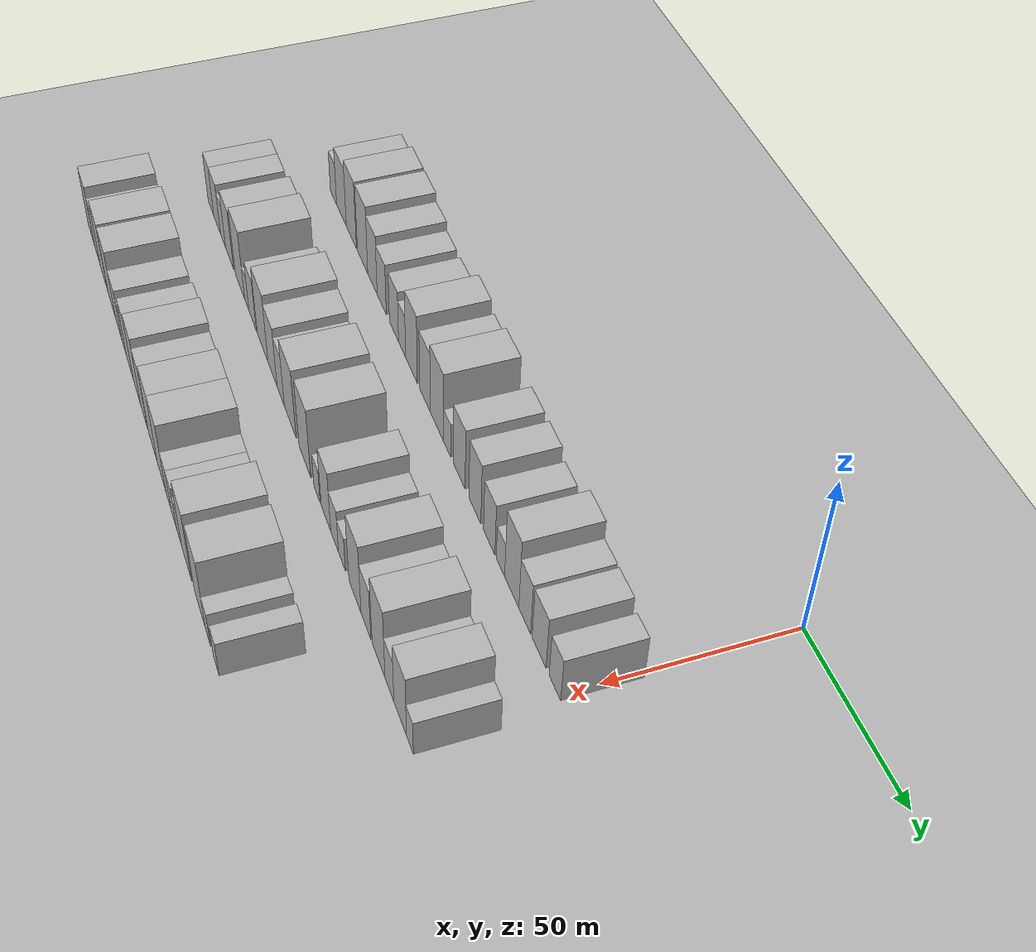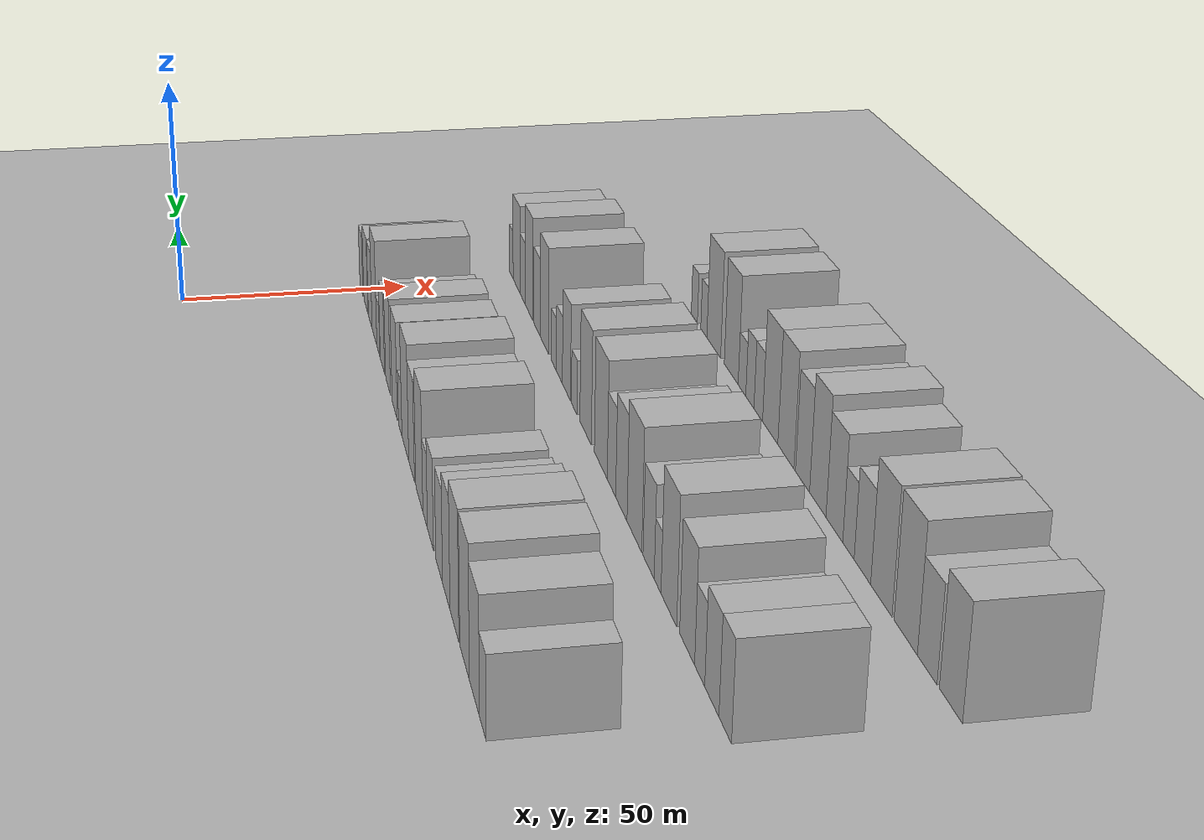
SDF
<sdf version="1.6">
 <world name="default">
  <include><name>ground_plane_1</name><uri>model://HANNAS_ground_plane</uri></include>
  <include>
   <name>ground_plane_2</name>
   <uri>model://HANNAS_ground_plane</uri>
   <pose>100 0 0  0 0 0</pose>
  </include>
  <model name="building_21">
   <static>1</static>
   <pose>50.0000 -183.7870 0 0.000000 0.000000 0.000000</pose>
   <link name="link">
    <pose>0 0 7.50 0 0 0</pose>
    <collision name="collision"><geometry><box><size>20.0000 6.6659 15.0000</size></box></geometry></collision>
    <visual name="visual">
     <cast_shadows>0</cast_shadows>
     <geometry><box><size>20.0000 6.6659 15.0000</size></box></geometry>
     <material>
      <script>
       <uri>model://HANNAS_wall/materials/scripts</uri>
       <uri>model://HANNAS_wall/materials/textures</uri>
       <name>vrc/HANNAS_wall</name>
      </script>
     </material>
    </visual>
   </link>
  </model>
  <model name="building_22">
   <static>1</static>
   <pose>50.0000 -175.3186 0 0.000000 0.000000 0.000000</pose>
   <link name="link">
    <pose>0 0 10.50 0 0 0</pose>
    <collision name="collision"><geometry><box><size>20.0000 10.2709 21.0000</size></box></geometry></collision>
    <visual name="visual">
     <cast_shadows>0</cast_shadows>
     <geometry><box><size>20.0000 10.2709 21.0000</size></box></geometry>
     <material>
      <script>
       <uri>model://HANNAS_wall/materials/scripts</uri>
       <uri>model://HANNAS_wall/materials/textures</uri>
       <name>vrc/HANNAS_wall</name>
      </script>
     </material>
    </visual>
   </link>
  </model>
  <model name="building_23">
   <static>1</static>
   <pose>50.0000 -164.9860 0 0.000000 0.000000 0.000000</pose>
   <link name="link">
    <pose>0 0 12.00 0 0 0</pose>
    <collision name="collision"><geometry><box><size>20.0000 10.3942 24.0000</size></box></geometry></collision>
    <visual name="visual">
     <cast_shadows>0</cast_shadows>
     <geometry><box><size>20.0000 10.3942 24.0000</size></box></geometry>
     <material>
      <script>
       <uri>model://HANNAS_wall/materials/scripts</uri>
       <uri>model://HANNAS_wall/materials/textures</uri>
       <name>vrc/HANNAS_wall</name>
      </script>
     </material>
    </visual>
   </link>
  </model>
  <model name="building_24">
   <static>1</static>
   <pose>50.0000 -153.6538 0 0.000000 0.000000 0.000000</pose>
   <link name="link">
    <pose>0 0 12.00 0 0 0</pose>
    <collision name="collision"><geometry><box><size>20.0000 10.2702 24.0000</size></box></geometry></collision>
    <visual name="visual">
     <cast_shadows>0</cast_shadows>
     <geometry><box><size>20.0000 10.2702 24.0000</size></box></geometry>
     <material>
      <script>
       <uri>model://HANNAS_wall/materials/scripts</uri>
       <uri>model://HANNAS_wall/materials/textures</uri>
       <name>vrc/HANNAS_wall</name>
      </script>
     </material>
    </visual>
   </link>
  </model>
  <model name="building_25">
   <static>1</static>
   <pose>50.0000 -143.9821 0 0.000000 0.000000 0.000000</pose>
   <link name="link">
    <pose>0 0 10.50 0 0 0</pose>
    <collision name="collision"><geometry><box><size>20.0000 9.0734 21.0000</size></box></geometry></collision>
    <visual name="visual">
     <cast_shadows>0</cast_shadows>
     <geometry><box><size>20.0000 9.0734 21.0000</size></box></geometry>
     <material>
      <script>
       <uri>model://HANNAS_wall/materials/scripts</uri>
       <uri>model://HANNAS_wall/materials/textures</uri>
       <name>vrc/HANNAS_wall</name>
      </script>
     </material>
    </visual>
   </link>
  </model>
  <model name="building_26">
   <static>1</static>
   <pose>50.0000 -135.1392 0 0.000000 0.000000 0.000000</pose>
   <link name="link">
    <pose>0 0 9.00 0 0 0</pose>
    <collision name="collision"><geometry><box><size>20.0000 8.6123 18.0000</size></box></geometry></collision>
    <visual name="visual">
     <cast_shadows>0</cast_shadows>
     <geometry><box><size>20.0000 8.6123 18.0000</size></box></geometry>
     <material>
      <script>
       <uri>model://HANNAS_wall/materials/scripts</uri>
       <uri>model://HANNAS_wall/materials/textures</uri>
       <name>vrc/HANNAS_wall</name>
      </script>
     </material>
    </visual>
   </link>
  </model>
  <model name="building_27">
   <static>1</static>
   <pose>50.0000 -123.6976 0 0.000000 0.000000 0.000000</pose>
   <link name="link">
    <pose>0 0 9.00 0 0 0</pose>
    <collision name="collision"><geometry><box><size>20.0000 8.2710 18.0000</size></box></geometry></collision>
    <visual name="visual">
     <cast_shadows>0</cast_shadows>
     <geometry><box><size>20.0000 8.2710 18.0000</size></box></geometry>
     <material>
      <script>
       <uri>model://HANNAS_wall/materials/scripts</uri>
       <uri>model://HANNAS_wall/materials/textures</uri>
       <name>vrc/HANNAS_wall</name>
      </script>
     </material>
    </visual>
   </link>
  </model>
  <model name="building_28">
   <static>1</static>
   <pose>50.0000 -116.3931 0 0.000000 0.000000 0.000000</pose>
   <link name="link">
    <pose>0 0 7.50 0 0 0</pose>
    <collision name="collision"><geometry><box><size>20.0000 6.3378 15.0000</size></box></geometry></collision>
    <visual name="visual">
     <cast_shadows>0</cast_shadows>
     <geometry><box><size>20.0000 6.3378 15.0000</size></box></geometry>
     <material>
      <script>
       <uri>model://HANNAS_wall/materials/scripts</uri>
       <uri>model://HANNAS_wall/materials/textures</uri>
       <name>vrc/HANNAS_wall</name>
      </script>
     </material>
    </visual>
   </link>
  </model>
  <model name="building_29">
   <static>1</static>
   <pose>50.0000 -108.0899 0 0.000000 0.000000 0.000000</pose>
   <link name="link">
    <pose>0 0 12.00 0 0 0</pose>
    <collision name="collision"><geometry><box><size>20.0000 10.2686 24.0000</size></box></geometry></collision>
    <visual name="visual">
     <cast_shadows>0</cast_shadows>
     <geometry><box><size>20.0000 10.2686 24.0000</size></box></geometry>
     <material>
      <script>
       <uri>model://HANNAS_wall/materials/scripts</uri>
       <uri>model://HANNAS_wall/materials/textures</uri>
       <name>vrc/HANNAS_wall</name>
      </script>
     </material>
    </visual>
   </link>
  </model>
  <model name="building_30">
   <static>1</static>
   <pose>50.0000 -96.5013 0 0.000000 0.000000 0.000000</pose>
   <link name="link">
    <pose>0 0 10.50 0 0 0</pose>
    <collision name="collision"><geometry><box><size>20.0000 8.9086 21.0000</size></box></geometry></collision>
    <visual name="visual">
     <cast_shadows>0</cast_shadows>
     <geometry><box><size>20.0000 8.9086 21.0000</size></box></geometry>
     <material>
      <script>
       <uri>model://HANNAS_wall/materials/scripts</uri>
       <uri>model://HANNAS_wall/materials/textures</uri>
       <name>vrc/HANNAS_wall</name>
      </script>
     </material>
    </visual>
   </link>
  </model>
  <model name="building_31">
   <static>1</static>
   <pose>50.0000 -86.5494 0 0.000000 0.000000 0.000000</pose>
   <link name="link">
    <pose>0 0 12.00 0 0 0</pose>
    <collision name="collision"><geometry><box><size>20.0000 10.9953 24.0000</size></box></geometry></collision>
    <visual name="visual">
     <cast_shadows>0</cast_shadows>
     <geometry><box><size>20.0000 10.9953 24.0000</size></box></geometry>
     <material>
      <script>
       <uri>model://HANNAS_wall/materials/scripts</uri>
       <uri>model://HANNAS_wall/materials/textures</uri>
       <name>vrc/HANNAS_wall</name>
      </script>
     </material>
    </visual>
   </link>
  </model>
  <model name="building_32">
   <static>1</static>
   <pose>50.0000 -78.2267 0 0.000000 0.000000 0.000000</pose>
   <link name="link">
    <pose>0 0 6.00 0 0 0</pose>
    <collision name="collision"><geometry><box><size>20.0000 5.6502 12.0000</size></box></geometry></collision>
    <visual name="visual">
     <cast_shadows>0</cast_shadows>
     <geometry><box><size>20.0000 5.6502 12.0000</size></box></geometry>
     <material>
      <script>
       <uri>model://HANNAS_wall/materials/scripts</uri>
       <uri>model://HANNAS_wall/materials/textures</uri>
       <name>vrc/HANNAS_wall</name>
      </script>
     </material>
    </visual>
   </link>
  </model>
  <model name="building_33">
   <static>1</static>
   <pose>50.0000 -68.7945 0 0.000000 0.000000 0.000000</pose>
   <link name="link">
    <pose>0 0 10.50 0 0 0</pose>
    <collision name="collision"><geometry><box><size>20.0000 9.2141 21.0000</size></box></geometry></collision>
    <visual name="visual">
     <cast_shadows>0</cast_shadows>
     <geometry><box><size>20.0000 9.2141 21.0000</size></box></geometry>
     <material>
      <script>
       <uri>model://HANNAS_wall/materials/scripts</uri>
       <uri>model://HANNAS_wall/materials/textures</uri>
       <name>vrc/HANNAS_wall</name>
      </script>
     </material>
    </visual>
   </link>
  </model>
  <model name="building_34">
   <static>1</static>
   <pose>50.0000 -56.7587 0 0.000000 0.000000 0.000000</pose>
   <link name="link">
    <pose>0 0 10.50 0 0 0</pose>
    <collision name="collision"><geometry><box><size>20.0000 8.8575 21.0000</size></box></geometry></collision>
    <visual name="visual">
     <cast_shadows>0</cast_shadows>
     <geometry><box><size>20.0000 8.8575 21.0000</size></box></geometry>
     <material>
      <script>
       <uri>model://HANNAS_wall/materials/scripts</uri>
       <uri>model://HANNAS_wall/materials/textures</uri>
       <name>vrc/HANNAS_wall</name>
      </script>
     </material>
    </visual>
   </link>
  </model>
  <model name="building_35">
   <static>1</static>
   <pose>50.0000 -46.2053 0 0.000000 0.000000 0.000000</pose>
   <link name="link">
    <pose>0 0 9.00 0 0 0</pose>
    <collision name="collision"><geometry><box><size>20.0000 8.2493 18.0000</size></box></geometry></collision>
    <visual name="visual">
     <cast_shadows>0</cast_shadows>
     <geometry><box><size>20.0000 8.2493 18.0000</size></box></geometry>
     <material>
      <script>
       <uri>model://HANNAS_wall/materials/scripts</uri>
       <uri>model://HANNAS_wall/materials/textures</uri>
       <name>vrc/HANNAS_wall</name>
      </script>
     </material>
    </visual>
   </link>
  </model>
  <model name="building_36">
   <static>1</static>
   <pose>50.0000 -38.1359 0 0.000000 0.000000 0.000000</pose>
   <link name="link">
    <pose>0 0 6.00 0 0 0</pose>
    <collision name="collision"><geometry><box><size>20.0000 5.8894 12.0000</size></box></geometry></collision>
    <visual name="visual">
     <cast_shadows>0</cast_shadows>
     <geometry><box><size>20.0000 5.8894 12.0000</size></box></geometry>
     <material>
      <script>
       <uri>model://HANNAS_wall/materials/scripts</uri>
       <uri>model://HANNAS_wall/materials/textures</uri>
       <name>vrc/HANNAS_wall</name>
      </script>
     </material>
    </visual>
   </link>
  </model>
  <model name="building_37">
   <static>1</static>
   <pose>50.0000 -30.3143 0 0.000000 0.000000 0.000000</pose>
   <link name="link">
    <pose>0 0 12.00 0 0 0</pose>
    <collision name="collision"><geometry><box><size>20.0000 9.7538 24.0000</size></box></geometry></collision>
    <visual name="visual">
     <cast_shadows>0</cast_shadows>
     <geometry><box><size>20.0000 9.7538 24.0000</size></box></geometry>
     <material>
      <script>
       <uri>model://HANNAS_wall/materials/scripts</uri>
       <uri>model://HANNAS_wall/materials/textures</uri>
       <name>vrc/HANNAS_wall</name>
      </script>
     </material>
    </visual>
   </link>
  </model>
  <model name="building_38">
   <static>1</static>
   <pose>50.0000 -21.4955 0 0.000000 0.000000 0.000000</pose>
   <link name="link">
    <pose>0 0 9.00 0 0 0</pose>
    <collision name="collision"><geometry><box><size>20.0000 7.8839 18.0000</size></box></geometry></collision>
    <visual name="visual">
     <cast_shadows>0</cast_shadows>
     <geometry><box><size>20.0000 7.8839 18.0000</size></box></geometry>
     <material>
      <script>
       <uri>model://HANNAS_wall/materials/scripts</uri>
       <uri>model://HANNAS_wall/materials/textures</uri>
       <name>vrc/HANNAS_wall</name>
      </script>
     </material>
    </visual>
   </link>
  </model>
  <model name="building_39">
   <static>1</static>
   <pose>50.0000 -12.0647 0 0.000000 0.000000 0.000000</pose>
   <link name="link">
    <pose>0 0 9.00 0 0 0</pose>
    <collision name="collision"><geometry><box><size>20.0000 8.9779 18.0000</size></box></geometry></collision>
    <visual name="visual">
     <cast_shadows>0</cast_shadows>
     <geometry><box><size>20.0000 8.9779 18.0000</size></box></geometry>
     <material>
      <script>
       <uri>model://HANNAS_wall/materials/scripts</uri>
       <uri>model://HANNAS_wall/materials/textures</uri>
       <name>vrc/HANNAS_wall</name>
      </script>
     </material>
    </visual>
   </link>
  </model>
  <model name="building_40">
   <static>1</static>
   <pose>50.0000 -1.9716 0 0.000000 0.000000 0.000000</pose>
   <link name="link">
    <pose>0 0 7.50 0 0 0</pose>
    <collision name="collision"><geometry><box><size>20.0000 7.2081 15.0000</size></box></geometry></collision>
    <visual name="visual">
     <cast_shadows>0</cast_shadows>
     <geometry><box><size>20.0000 7.2081 15.0000</size></box></geometry>
     <material>
      <script>
       <uri>model://HANNAS_wall/materials/scripts</uri>
       <uri>model://HANNAS_wall/materials/textures</uri>
       <name>vrc/HANNAS_wall</name>
      </script>
     </material>
    </visual>
   </link>
  </model>
  <model name="building_103">
   <static>1</static>
   <pose>85.0000 -190.1305 0 0.000000 0.000000 0.000000</pose>
   <link name="link">
    <pose>0 0 9.00 0 0 0</pose>
    <collision name="collision"><geometry><box><size>20.0000 7.2286 18.0000</size></box></geometry></collision>
    <visual name="visual">
     <cast_shadows>0</cast_shadows>
     <geometry><box><size>20.0000 7.2286 18.0000</size></box></geometry>
     <material>
      <script>
       <uri>model://HANNAS_wall/materials/scripts</uri>
       <uri>model://HANNAS_wall/materials/textures</uri>
       <name>vrc/HANNAS_wall</name>
      </script>
     </material>
    </visual>
   </link>
  </model>
  <model name="building_104">
   <static>1</static>
   <pose>85.0000 -182.2547 0 0.000000 0.000000 0.000000</pose>
   <link name="link">
    <pose>0 0 9.00 0 0 0</pose>
    <collision name="collision"><geometry><box><size>20.0000 8.5231 18.0000</size></box></geometry></collision>
    <visual name="visual">
     <cast_shadows>0</cast_shadows>
     <geometry><box><size>20.0000 8.5231 18.0000</size></box></geometry>
     <material>
      <script>
       <uri>model://HANNAS_wall/materials/scripts</uri>
       <uri>model://HANNAS_wall/materials/textures</uri>
       <name>vrc/HANNAS_wall</name>
      </script>
     </material>
    </visual>
   </link>
  </model>
  <model name="building_105">
   <static>1</static>
   <pose>85.0000 -174.8266 0 0.000000 0.000000 0.000000</pose>
   <link name="link">
    <pose>0 0 7.50 0 0 0</pose>
    <collision name="collision"><geometry><box><size>20.0000 6.3332 15.0000</size></box></geometry></collision>
    <visual name="visual">
     <cast_shadows>0</cast_shadows>
     <geometry><box><size>20.0000 6.3332 15.0000</size></box></geometry>
     <material>
      <script>
       <uri>model://HANNAS_wall/materials/scripts</uri>
       <uri>model://HANNAS_wall/materials/textures</uri>
       <name>vrc/HANNAS_wall</name>
      </script>
     </material>
    </visual>
   </link>
  </model>
  <model name="building_106">
   <static>1</static>
   <pose>85.0000 -166.7384 0 0.000000 0.000000 0.000000</pose>
   <link name="link">
    <pose>0 0 10.50 0 0 0</pose>
    <collision name="collision"><geometry><box><size>20.0000 9.8432 21.0000</size></box></geometry></collision>
    <visual name="visual">
     <cast_shadows>0</cast_shadows>
     <geometry><box><size>20.0000 9.8432 21.0000</size></box></geometry>
     <material>
      <script>
       <uri>model://HANNAS_wall/materials/scripts</uri>
       <uri>model://HANNAS_wall/materials/textures</uri>
       <name>vrc/HANNAS_wall</name>
      </script>
     </material>
    </visual>
   </link>
  </model>
  <model name="building_107">
   <static>1</static>
   <pose>85.0000 -154.3209 0 0.000000 0.000000 0.000000</pose>
   <link name="link">
    <pose>0 0 12.00 0 0 0</pose>
    <collision name="collision"><geometry><box><size>20.0000 10.9917 24.0000</size></box></geometry></collision>
    <visual name="visual">
     <cast_shadows>0</cast_shadows>
     <geometry><box><size>20.0000 10.9917 24.0000</size></box></geometry>
     <material>
      <script>
       <uri>model://HANNAS_wall/materials/scripts</uri>
       <uri>model://HANNAS_wall/materials/textures</uri>
       <name>vrc/HANNAS_wall</name>
      </script>
     </material>
    </visual>
   </link>
  </model>
  <model name="building_108">
   <static>1</static>
   <pose>85.0000 -146.3477 0 0.000000 0.000000 0.000000</pose>
   <link name="link">
    <pose>0 0 6.00 0 0 0</pose>
    <collision name="collision"><geometry><box><size>20.0000 4.9548 12.0000</size></box></geometry></collision>
    <visual name="visual">
     <cast_shadows>0</cast_shadows>
     <geometry><box><size>20.0000 4.9548 12.0000</size></box></geometry>
     <material>
      <script>
       <uri>model://HANNAS_wall/materials/scripts</uri>
       <uri>model://HANNAS_wall/materials/textures</uri>
       <name>vrc/HANNAS_wall</name>
      </script>
     </material>
    </visual>
   </link>
  </model>
  <model name="building_109">
   <static>1</static>
   <pose>85.0000 -139.6393 0 0.000000 0.000000 0.000000</pose>
   <link name="link">
    <pose>0 0 9.00 0 0 0</pose>
    <collision name="collision"><geometry><box><size>20.0000 8.4619 18.0000</size></box></geometry></collision>
    <visual name="visual">
     <cast_shadows>0</cast_shadows>
     <geometry><box><size>20.0000 8.4619 18.0000</size></box></geometry>
     <material>
      <script>
       <uri>model://HANNAS_wall/materials/scripts</uri>
       <uri>model://HANNAS_wall/materials/textures</uri>
       <name>vrc/HANNAS_wall</name>
      </script>
     </material>
    </visual>
   </link>
  </model>
  <model name="building_110">
   <static>1</static>
   <pose>85.0000 -128.5204 0 0.000000 0.000000 0.000000</pose>
   <link name="link">
    <pose>0 0 12.00 0 0 0</pose>
    <collision name="collision"><geometry><box><size>20.0000 11.7759 24.0000</size></box></geometry></collision>
    <visual name="visual">
     <cast_shadows>0</cast_shadows>
     <geometry><box><size>20.0000 11.7759 24.0000</size></box></geometry>
     <material>
      <script>
       <uri>model://HANNAS_wall/materials/scripts</uri>
       <uri>model://HANNAS_wall/materials/textures</uri>
       <name>vrc/HANNAS_wall</name>
      </script>
     </material>
    </visual>
   </link>
  </model>
  <model name="building_111">
   <static>1</static>
   <pose>85.0000 -117.8298 0 0.000000 0.000000 0.000000</pose>
   <link name="link">
    <pose>0 0 10.50 0 0 0</pose>
    <collision name="collision"><geometry><box><size>20.0000 9.6054 21.0000</size></box></geometry></collision>
    <visual name="visual">
     <cast_shadows>0</cast_shadows>
     <geometry><box><size>20.0000 9.6054 21.0000</size></box></geometry>
     <material>
      <script>
       <uri>model://HANNAS_wall/materials/scripts</uri>
       <uri>model://HANNAS_wall/materials/textures</uri>
       <name>vrc/HANNAS_wall</name>
      </script>
     </material>
    </visual>
   </link>
  </model>
  <model name="building_112">
   <static>1</static>
   <pose>85.0000 -109.2893 0 0.000000 0.000000 0.000000</pose>
   <link name="link">
    <pose>0 0 9.00 0 0 0</pose>
    <collision name="collision"><geometry><box><size>20.0000 7.4754 18.0000</size></box></geometry></collision>
    <visual name="visual">
     <cast_shadows>0</cast_shadows>
     <geometry><box><size>20.0000 7.4754 18.0000</size></box></geometry>
     <material>
      <script>
       <uri>model://HANNAS_wall/materials/scripts</uri>
       <uri>model://HANNAS_wall/materials/textures</uri>
       <name>vrc/HANNAS_wall</name>
      </script>
     </material>
    </visual>
   </link>
  </model>
  <model name="building_113">
   <static>1</static>
   <pose>85.0000 -99.6575 0 0.000000 0.000000 0.000000</pose>
   <link name="link">
    <pose>0 0 12.00 0 0 0</pose>
    <collision name="collision"><geometry><box><size>20.0000 11.7882 24.0000</size></box></geometry></collision>
    <visual name="visual">
     <cast_shadows>0</cast_shadows>
     <geometry><box><size>20.0000 11.7882 24.0000</size></box></geometry>
     <material>
      <script>
       <uri>model://HANNAS_wall/materials/scripts</uri>
       <uri>model://HANNAS_wall/materials/textures</uri>
       <name>vrc/HANNAS_wall</name>
      </script>
     </material>
    </visual>
   </link>
  </model>
  <model name="building_114">
   <static>1</static>
   <pose>85.0000 -85.1665 0 0.000000 0.000000 0.000000</pose>
   <link name="link">
    <pose>0 0 12.00 0 0 0</pose>
    <collision name="collision"><geometry><box><size>20.0000 11.1940 24.0000</size></box></geometry></collision>
    <visual name="visual">
     <cast_shadows>0</cast_shadows>
     <geometry><box><size>20.0000 11.1940 24.0000</size></box></geometry>
     <material>
      <script>
       <uri>model://HANNAS_wall/materials/scripts</uri>
       <uri>model://HANNAS_wall/materials/textures</uri>
       <name>vrc/HANNAS_wall</name>
      </script>
     </material>
    </visual>
   </link>
  </model>
  <model name="building_115">
   <static>1</static>
   <pose>85.0000 -73.6883 0 0.000000 0.000000 0.000000</pose>
   <link name="link">
    <pose>0 0 6.00 0 0 0</pose>
    <collision name="collision"><geometry><box><size>20.0000 5.7625 12.0000</size></box></geometry></collision>
    <visual name="visual">
     <cast_shadows>0</cast_shadows>
     <geometry><box><size>20.0000 5.7625 12.0000</size></box></geometry>
     <material>
      <script>
       <uri>model://HANNAS_wall/materials/scripts</uri>
       <uri>model://HANNAS_wall/materials/textures</uri>
       <name>vrc/HANNAS_wall</name>
      </script>
     </material>
    </visual>
   </link>
  </model>
  <model name="building_116">
   <static>1</static>
   <pose>85.0000 -65.4773 0 0.000000 0.000000 0.000000</pose>
   <link name="link">
    <pose>0 0 10.50 0 0 0</pose>
    <collision name="collision"><geometry><box><size>20.0000 8.6596 21.0000</size></box></geometry></collision>
    <visual name="visual">
     <cast_shadows>0</cast_shadows>
     <geometry><box><size>20.0000 8.6596 21.0000</size></box></geometry>
     <material>
      <script>
       <uri>model://HANNAS_wall/materials/scripts</uri>
       <uri>model://HANNAS_wall/materials/textures</uri>
       <name>vrc/HANNAS_wall</name>
      </script>
     </material>
    </visual>
   </link>
  </model>
  <model name="building_117">
   <static>1</static>
   <pose>85.0000 -57.7674 0 0.000000 0.000000 0.000000</pose>
   <link name="link">
    <pose>0 0 7.50 0 0 0</pose>
    <collision name="collision"><geometry><box><size>20.0000 6.7602 15.0000</size></box></geometry></collision>
    <visual name="visual">
     <cast_shadows>0</cast_shadows>
     <geometry><box><size>20.0000 6.7602 15.0000</size></box></geometry>
     <material>
      <script>
       <uri>model://HANNAS_wall/materials/scripts</uri>
       <uri>model://HANNAS_wall/materials/textures</uri>
       <name>vrc/HANNAS_wall</name>
      </script>
     </material>
    </visual>
   </link>
  </model>
  <model name="building_118">
   <static>1</static>
   <pose>85.0000 -51.3932 0 0.000000 0.000000 0.000000</pose>
   <link name="link">
    <pose>0 0 6.00 0 0 0</pose>
    <collision name="collision"><geometry><box><size>20.0000 5.9882 12.0000</size></box></geometry></collision>
    <visual name="visual">
     <cast_shadows>0</cast_shadows>
     <geometry><box><size>20.0000 5.9882 12.0000</size></box></geometry>
     <material>
      <script>
       <uri>model://HANNAS_wall/materials/scripts</uri>
       <uri>model://HANNAS_wall/materials/textures</uri>
       <name>vrc/HANNAS_wall</name>
      </script>
     </material>
    </visual>
   </link>
  </model>
  <model name="building_119">
   <static>1</static>
   <pose>85.0000 -40.3493 0 0.000000 0.000000 0.000000</pose>
   <link name="link">
    <pose>0 0 12.00 0 0 0</pose>
    <collision name="collision"><geometry><box><size>20.0000 10.0996 24.0000</size></box></geometry></collision>
    <visual name="visual">
     <cast_shadows>0</cast_shadows>
     <geometry><box><size>20.0000 10.0996 24.0000</size></box></geometry>
     <material>
      <script>
       <uri>model://HANNAS_wall/materials/scripts</uri>
       <uri>model://HANNAS_wall/materials/textures</uri>
       <name>vrc/HANNAS_wall</name>
      </script>
     </material>
    </visual>
   </link>
  </model>
  <model name="building_120">
   <static>1</static>
   <pose>85.0000 -31.3136 0 0.000000 0.000000 0.000000</pose>
   <link name="link">
    <pose>0 0 9.00 0 0 0</pose>
    <collision name="collision"><geometry><box><size>20.0000 7.9716 18.0000</size></box></geometry></collision>
    <visual name="visual">
     <cast_shadows>0</cast_shadows>
     <geometry><box><size>20.0000 7.9716 18.0000</size></box></geometry>
     <material>
      <script>
       <uri>model://HANNAS_wall/materials/scripts</uri>
       <uri>model://HANNAS_wall/materials/textures</uri>
       <name>vrc/HANNAS_wall</name>
      </script>
     </material>
    </visual>
   </link>
  </model>
  <model name="building_121">
   <static>1</static>
   <pose>85.0000 -21.3061 0 0.000000 0.000000 0.000000</pose>
   <link name="link">
    <pose>0 0 12.00 0 0 0</pose>
    <collision name="collision"><geometry><box><size>20.0000 10.0435 24.0000</size></box></geometry></collision>
    <visual name="visual">
     <cast_shadows>0</cast_shadows>
     <geometry><box><size>20.0000 10.0435 24.0000</size></box></geometry>
     <material>
      <script>
       <uri>model://HANNAS_wall/materials/scripts</uri>
       <uri>model://HANNAS_wall/materials/textures</uri>
       <name>vrc/HANNAS_wall</name>
      </script>
     </material>
    </visual>
   </link>
  </model>
  <model name="building_122">
   <static>1</static>
   <pose>85.0000 -12.9126 0 0.000000 0.000000 0.000000</pose>
   <link name="link">
    <pose>0 0 7.50 0 0 0</pose>
    <collision name="collision"><geometry><box><size>20.0000 6.7434 15.0000</size></box></geometry></collision>
    <visual name="visual">
     <cast_shadows>0</cast_shadows>
     <geometry><box><size>20.0000 6.7434 15.0000</size></box></geometry>
     <material>
      <script>
       <uri>model://HANNAS_wall/materials/scripts</uri>
       <uri>model://HANNAS_wall/materials/textures</uri>
       <name>vrc/HANNAS_wall</name>
      </script>
     </material>
    </visual>
   </link>
  </model>
  <model name="building_123">
   <static>1</static>
   <pose>85.0000 -4.8995 0 0.000000 0.000000 0.000000</pose>
   <link name="link">
    <pose>0 0 10.50 0 0 0</pose>
    <collision name="collision"><geometry><box><size>20.0000 9.2829 21.0000</size></box></geometry></collision>
    <visual name="visual">
     <cast_shadows>0</cast_shadows>
     <geometry><box><size>20.0000 9.2829 21.0000</size></box></geometry>
     <material>
      <script>
       <uri>model://HANNAS_wall/materials/scripts</uri>
       <uri>model://HANNAS_wall/materials/textures</uri>
       <name>vrc/HANNAS_wall</name>
      </script>
     </material>
    </visual>
   </link>
  </model>
  <model name="building_124">
   <static>1</static>
   <pose>85.0000 2.2476 0 0.000000 0.000000 0.000000</pose>
   <link name="link">
    <pose>0 0 6.00 0 0 0</pose>
    <collision name="collision"><geometry><box><size>20.0000 5.0112 12.0000</size></box></geometry></collision>
    <visual name="visual">
     <cast_shadows>0</cast_shadows>
     <geometry><box><size>20.0000 5.0112 12.0000</size></box></geometry>
     <material>
      <script>
       <uri>model://HANNAS_wall/materials/scripts</uri>
       <uri>model://HANNAS_wall/materials/textures</uri>
       <name>vrc/HANNAS_wall</name>
      </script>
     </material>
    </visual>
   </link>
  </model>
  <model name="building_183">
   <static>1</static>
   <pose>120.0000 -189.2729 0 0.000000 0.000000 0.000000</pose>
   <link name="link">
    <pose>0 0 10.50 0 0 0</pose>
    <collision name="collision"><geometry><box><size>20.0000 9.8546 21.0000</size></box></geometry></collision>
    <visual name="visual">
     <cast_shadows>0</cast_shadows>
     <geometry><box><size>20.0000 9.8546 21.0000</size></box></geometry>
     <material>
      <script>
       <uri>model://HANNAS_wall/materials/scripts</uri>
       <uri>model://HANNAS_wall/materials/textures</uri>
       <name>vrc/HANNAS_wall</name>
      </script>
     </material>
    </visual>
   </link>
  </model>
  <model name="building_184">
   <static>1</static>
   <pose>120.0000 -178.9381 0 0.000000 0.000000 0.000000</pose>
   <link name="link">
    <pose>0 0 9.00 0 0 0</pose>
    <collision name="collision"><geometry><box><size>20.0000 8.8150 18.0000</size></box></geometry></collision>
    <visual name="visual">
     <cast_shadows>0</cast_shadows>
     <geometry><box><size>20.0000 8.8150 18.0000</size></box></geometry>
     <material>
      <script>
       <uri>model://HANNAS_wall/materials/scripts</uri>
       <uri>model://HANNAS_wall/materials/textures</uri>
       <name>vrc/HANNAS_wall</name>
      </script>
     </material>
    </visual>
   </link>
  </model>
  <model name="building_185">
   <static>1</static>
   <pose>120.0000 -169.0164 0 0.000000 0.000000 0.000000</pose>
   <link name="link">
    <pose>0 0 12.00 0 0 0</pose>
    <collision name="collision"><geometry><box><size>20.0000 11.0284 24.0000</size></box></geometry></collision>
    <visual name="visual">
     <cast_shadows>0</cast_shadows>
     <geometry><box><size>20.0000 11.0284 24.0000</size></box></geometry>
     <material>
      <script>
       <uri>model://HANNAS_wall/materials/scripts</uri>
       <uri>model://HANNAS_wall/materials/textures</uri>
       <name>vrc/HANNAS_wall</name>
      </script>
     </material>
    </visual>
   </link>
  </model>
  <model name="building_186">
   <static>1</static>
   <pose>120.0000 -157.0941 0 0.000000 0.000000 0.000000</pose>
   <link name="link">
    <pose>0 0 12.00 0 0 0</pose>
    <collision name="collision"><geometry><box><size>20.0000 10.8162 24.0000</size></box></geometry></collision>
    <visual name="visual">
     <cast_shadows>0</cast_shadows>
     <geometry><box><size>20.0000 10.8162 24.0000</size></box></geometry>
     <material>
      <script>
       <uri>model://HANNAS_wall/materials/scripts</uri>
       <uri>model://HANNAS_wall/materials/textures</uri>
       <name>vrc/HANNAS_wall</name>
      </script>
     </material>
    </visual>
   </link>
  </model>
  <model name="building_187">
   <static>1</static>
   <pose>120.0000 -147.2881 0 0.000000 0.000000 0.000000</pose>
   <link name="link">
    <pose>0 0 9.00 0 0 0</pose>
    <collision name="collision"><geometry><box><size>20.0000 8.7959 18.0000</size></box></geometry></collision>
    <visual name="visual">
     <cast_shadows>0</cast_shadows>
     <geometry><box><size>20.0000 8.7959 18.0000</size></box></geometry>
     <material>
      <script>
       <uri>model://HANNAS_wall/materials/scripts</uri>
       <uri>model://HANNAS_wall/materials/textures</uri>
       <name>vrc/HANNAS_wall</name>
      </script>
     </material>
    </visual>
   </link>
  </model>
  <model name="building_188">
   <static>1</static>
   <pose>120.0000 -139.7462 0 0.000000 0.000000 0.000000</pose>
   <link name="link">
    <pose>0 0 7.50 0 0 0</pose>
    <collision name="collision"><geometry><box><size>20.0000 6.2879 15.0000</size></box></geometry></collision>
    <visual name="visual">
     <cast_shadows>0</cast_shadows>
     <geometry><box><size>20.0000 6.2879 15.0000</size></box></geometry>
     <material>
      <script>
       <uri>model://HANNAS_wall/materials/scripts</uri>
       <uri>model://HANNAS_wall/materials/textures</uri>
       <name>vrc/HANNAS_wall</name>
      </script>
     </material>
    </visual>
   </link>
  </model>
  <model name="building_189">
   <static>1</static>
   <pose>120.0000 -131.7845 0 0.000000 0.000000 0.000000</pose>
   <link name="link">
    <pose>0 0 10.50 0 0 0</pose>
    <collision name="collision"><geometry><box><size>20.0000 9.6356 21.0000</size></box></geometry></collision>
    <visual name="visual">
     <cast_shadows>0</cast_shadows>
     <geometry><box><size>20.0000 9.6356 21.0000</size></box></geometry>
     <material>
      <script>
       <uri>model://HANNAS_wall/materials/scripts</uri>
       <uri>model://HANNAS_wall/materials/textures</uri>
       <name>vrc/HANNAS_wall</name>
      </script>
     </material>
    </visual>
   </link>
  </model>
  <model name="building_190">
   <static>1</static>
   <pose>120.0000 -122.0027 0 0.000000 0.000000 0.000000</pose>
   <link name="link">
    <pose>0 0 12.00 0 0 0</pose>
    <collision name="collision"><geometry><box><size>20.0000 9.9281 24.0000</size></box></geometry></collision>
    <visual name="visual">
     <cast_shadows>0</cast_shadows>
     <geometry><box><size>20.0000 9.9281 24.0000</size></box></geometry>
     <material>
      <script>
       <uri>model://HANNAS_wall/materials/scripts</uri>
       <uri>model://HANNAS_wall/materials/textures</uri>
       <name>vrc/HANNAS_wall</name>
      </script>
     </material>
    </visual>
   </link>
  </model>
  <model name="building_191">
   <static>1</static>
   <pose>120.0000 -112.5829 0 0.000000 0.000000 0.000000</pose>
   <link name="link">
    <pose>0 0 10.50 0 0 0</pose>
    <collision name="collision"><geometry><box><size>20.0000 8.9115 21.0000</size></box></geometry></collision>
    <visual name="visual">
     <cast_shadows>0</cast_shadows>
     <geometry><box><size>20.0000 8.9115 21.0000</size></box></geometry>
     <material>
      <script>
       <uri>model://HANNAS_wall/materials/scripts</uri>
       <uri>model://HANNAS_wall/materials/textures</uri>
       <name>vrc/HANNAS_wall</name>
      </script>
     </material>
    </visual>
   </link>
  </model>
  <model name="building_192">
   <static>1</static>
   <pose>120.0000 -101.7825 0 0.000000 0.000000 0.000000</pose>
   <link name="link">
    <pose>0 0 12.00 0 0 0</pose>
    <collision name="collision"><geometry><box><size>20.0000 10.6893 24.0000</size></box></geometry></collision>
    <visual name="visual">
     <cast_shadows>0</cast_shadows>
     <geometry><box><size>20.0000 10.6893 24.0000</size></box></geometry>
     <material>
      <script>
       <uri>model://HANNAS_wall/materials/scripts</uri>
       <uri>model://HANNAS_wall/materials/textures</uri>
       <name>vrc/HANNAS_wall</name>
      </script>
     </material>
    </visual>
   </link>
  </model>
  <model name="building_193">
   <static>1</static>
   <pose>120.0000 -91.1231 0 0.000000 0.000000 0.000000</pose>
   <link name="link">
    <pose>0 0 12.00 0 0 0</pose>
    <collision name="collision"><geometry><box><size>20.0000 10.6296 24.0000</size></box></geometry></collision>
    <visual name="visual">
     <cast_shadows>0</cast_shadows>
     <geometry><box><size>20.0000 10.6296 24.0000</size></box></geometry>
     <material>
      <script>
       <uri>model://HANNAS_wall/materials/scripts</uri>
       <uri>model://HANNAS_wall/materials/textures</uri>
       <name>vrc/HANNAS_wall</name>
      </script>
     </material>
    </visual>
   </link>
  </model>
  <model name="building_194">
   <static>1</static>
   <pose>120.0000 -82.6694 0 0.000000 0.000000 0.000000</pose>
   <link name="link">
    <pose>0 0 7.50 0 0 0</pose>
    <collision name="collision"><geometry><box><size>20.0000 6.2778 15.0000</size></box></geometry></collision>
    <visual name="visual">
     <cast_shadows>0</cast_shadows>
     <geometry><box><size>20.0000 6.2778 15.0000</size></box></geometry>
     <material>
      <script>
       <uri>model://HANNAS_wall/materials/scripts</uri>
       <uri>model://HANNAS_wall/materials/textures</uri>
       <name>vrc/HANNAS_wall</name>
      </script>
     </material>
    </visual>
   </link>
  </model>
  <model name="building_195">
   <static>1</static>
   <pose>120.0000 -76.4791 0 0.000000 0.000000 0.000000</pose>
   <link name="link">
    <pose>0 0 7.50 0 0 0</pose>
    <collision name="collision"><geometry><box><size>20.0000 6.1026 15.0000</size></box></geometry></collision>
    <visual name="visual">
     <cast_shadows>0</cast_shadows>
     <geometry><box><size>20.0000 6.1026 15.0000</size></box></geometry>
     <material>
      <script>
       <uri>model://HANNAS_wall/materials/scripts</uri>
       <uri>model://HANNAS_wall/materials/textures</uri>
       <name>vrc/HANNAS_wall</name>
      </script>
     </material>
    </visual>
   </link>
  </model>
  <model name="building_196">
   <static>1</static>
   <pose>120.0000 -70.5212 0 0.000000 0.000000 0.000000</pose>
   <link name="link">
    <pose>0 0 6.00 0 0 0</pose>
    <collision name="collision"><geometry><box><size>20.0000 5.8132 12.0000</size></box></geometry></collision>
    <visual name="visual">
     <cast_shadows>0</cast_shadows>
     <geometry><box><size>20.0000 5.8132 12.0000</size></box></geometry>
     <material>
      <script>
       <uri>model://HANNAS_wall/materials/scripts</uri>
       <uri>model://HANNAS_wall/materials/textures</uri>
       <name>vrc/HANNAS_wall</name>
      </script>
     </material>
    </visual>
   </link>
  </model>
  <model name="building_197">
   <static>1</static>
   <pose>120.0000 -62.1273 0 0.000000 0.000000 0.000000</pose>
   <link name="link">
    <pose>0 0 12.00 0 0 0</pose>
    <collision name="collision"><geometry><box><size>20.0000 10.9748 24.0000</size></box></geometry></collision>
    <visual name="visual">
     <cast_shadows>0</cast_shadows>
     <geometry><box><size>20.0000 10.9748 24.0000</size></box></geometry>
     <material>
      <script>
       <uri>model://HANNAS_wall/materials/scripts</uri>
       <uri>model://HANNAS_wall/materials/textures</uri>
       <name>vrc/HANNAS_wall</name>
      </script>
     </material>
    </visual>
   </link>
  </model>
  <model name="building_198">
   <static>1</static>
   <pose>120.0000 -47.8732 0 0.000000 0.000000 0.000000</pose>
   <link name="link">
    <pose>0 0 12.00 0 0 0</pose>
    <collision name="collision"><geometry><box><size>20.0000 11.5334 24.0000</size></box></geometry></collision>
    <visual name="visual">
     <cast_shadows>0</cast_shadows>
     <geometry><box><size>20.0000 11.5334 24.0000</size></box></geometry>
     <material>
      <script>
       <uri>model://HANNAS_wall/materials/scripts</uri>
       <uri>model://HANNAS_wall/materials/textures</uri>
       <name>vrc/HANNAS_wall</name>
      </script>
     </material>
    </visual>
   </link>
  </model>
  <model name="building_199">
   <static>1</static>
   <pose>120.0000 -39.4438 0 0.000000 0.000000 0.000000</pose>
   <link name="link">
    <pose>0 0 6.00 0 0 0</pose>
    <collision name="collision"><geometry><box><size>20.0000 5.3253 12.0000</size></box></geometry></collision>
    <visual name="visual">
     <cast_shadows>0</cast_shadows>
     <geometry><box><size>20.0000 5.3253 12.0000</size></box></geometry>
     <material>
      <script>
       <uri>model://HANNAS_wall/materials/scripts</uri>
       <uri>model://HANNAS_wall/materials/textures</uri>
       <name>vrc/HANNAS_wall</name>
      </script>
     </material>
    </visual>
   </link>
  </model>
  <model name="building_200">
   <static>1</static>
   <pose>120.0000 -31.0499 0 0.000000 0.000000 0.000000</pose>
   <link name="link">
    <pose>0 0 6.00 0 0 0</pose>
    <collision name="collision"><geometry><box><size>20.0000 5.4625 12.0000</size></box></geometry></collision>
    <visual name="visual">
     <cast_shadows>0</cast_shadows>
     <geometry><box><size>20.0000 5.4625 12.0000</size></box></geometry>
     <material>
      <script>
       <uri>model://HANNAS_wall/materials/scripts</uri>
       <uri>model://HANNAS_wall/materials/textures</uri>
       <name>vrc/HANNAS_wall</name>
      </script>
     </material>
    </visual>
   </link>
  </model>
 </world>
</sdf>
